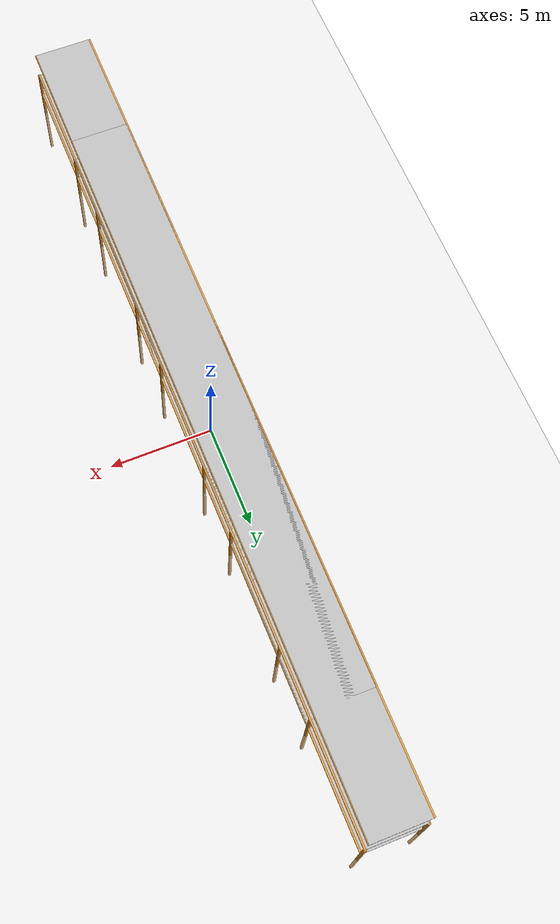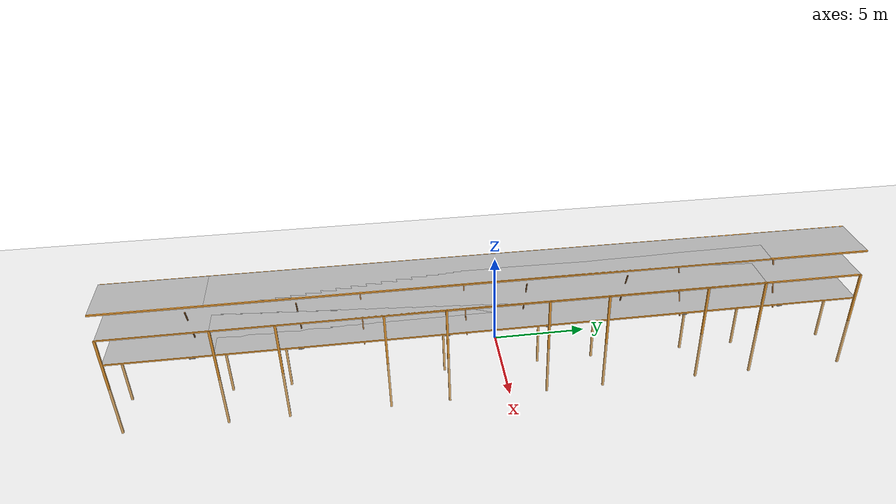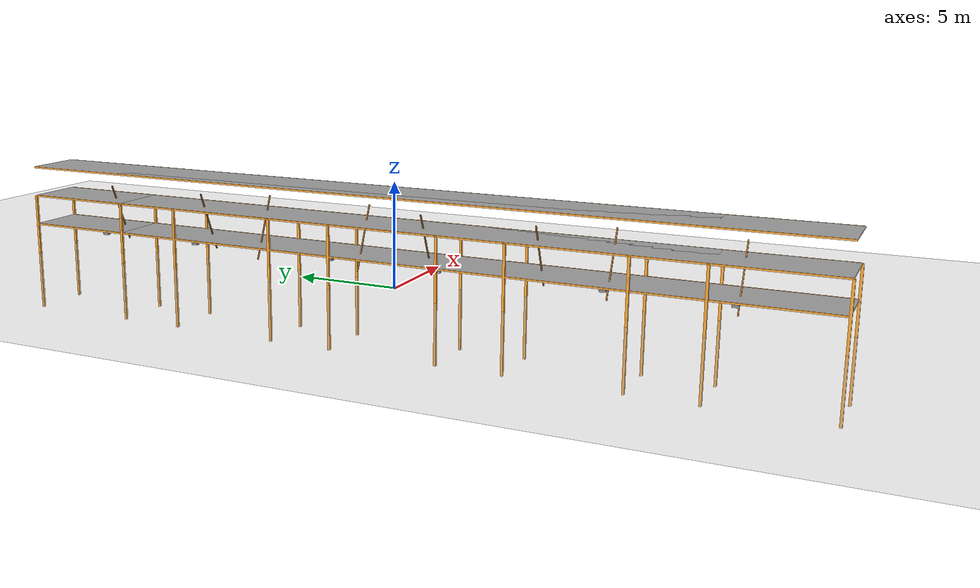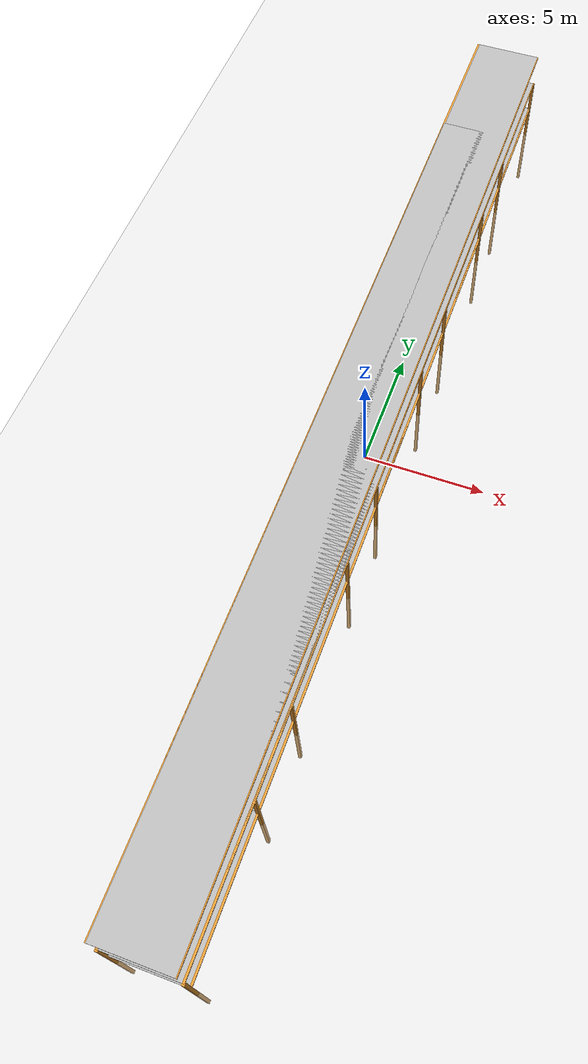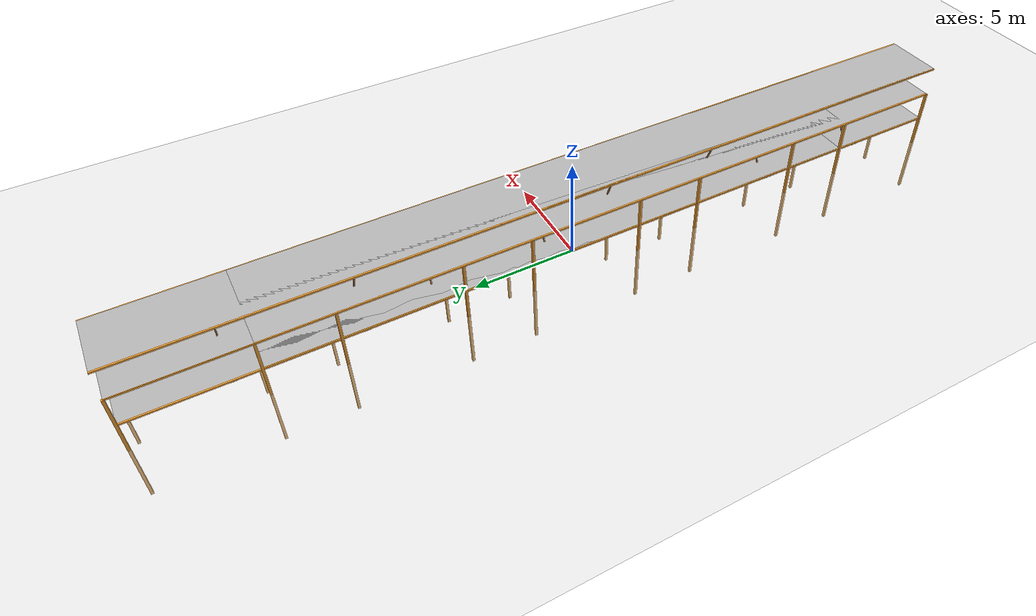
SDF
<?xml version="1.0" encoding="UTF-8"?>
<sdf version="1.9">
  <world name="warehouse">
    <physics type="ode">
      <max_step_size>0.004</max_step_size>
      <real_time_factor>1.0</real_time_factor>
      <real_time_update_rate>250</real_time_update_rate>
    </physics>

    <gravity>0 0 -9.8</gravity>
    <magnetic_field>6e-06 2.3e-05 -4.2e-05</magnetic_field>
    <atmosphere type="adiabatic"/>

    <scene>
      <grid>false</grid>
      <ambient>0.4 0.4 0.4 1</ambient>
      <background>0.7 0.7 0.7 1</background>
      <shadows>true</shadows>
    </scene>

    <model name="ground_plane">
      <static>true</static>
      <link name="link">
        <collision name="collision">
          <geometry>
            <plane>
              <normal>0 0 1</normal>
              <size>1 1</size>
            </plane>
          </geometry>
          <surface>
            <friction>
              <ode/>
            </friction>
            <bounce/>
            <contact/>
          </surface>
        </collision>
        <visual name="visual">
          <geometry>
            <plane>
              <normal>0 0 1</normal>
              <size>500 500</size>
            </plane>
          </geometry>
          <material>
            <ambient>0.8 0.8 0.8 1</ambient>
            <diffuse>0.8 0.8 0.8 1</diffuse>
            <specular>0.8 0.8 0.8 1</specular>
          </material>
        </visual>
        <pose>0 0 0 0 -0 0</pose>
        <inertial>
          <pose>0 0 0 0 -0 0</pose>
          <mass>1</mass>
          <inertia>
            <ixx>1</ixx>
            <ixy>0</ixy>
            <ixz>0</ixz>
            <iyy>1</iyy>
            <iyz>0</iyz>
            <izz>1</izz>
          </inertia>
        </inertial>
        <enable_wind>false</enable_wind>
      </link>
      <pose>0 0 0 0 -0 0</pose>
      <self_collide>false</self_collide>
    </model>

    <light name="sunUTC" type="directional">
      <pose>0 0 500 0 -0 0</pose>
      <cast_shadows>true</cast_shadows>
      <intensity>1</intensity>
      <direction>0.001 0.625 -0.78</direction>
      <diffuse>0.904 0.904 0.904 1</diffuse>
      <specular>0.271 0.271 0.271 1</specular>
      <attenuation>
        <range>2000</range>
        <linear>0</linear>
        <constant>1</constant>
        <quadratic>0</quadratic>
      </attenuation>
      <spot>
        <inner_angle>0</inner_angle>
        <outer_angle>0</outer_angle>
        <falloff>0</falloff>
      </spot>
    </light>

    <spherical_coordinates>
      <surface_model>EARTH_WGS84</surface_model>
      <world_frame_orientation>ENU</world_frame_orientation>
      <latitude_deg>47.397971057728974</latitude_deg>
      <longitude_deg> 8.546163739800146</longitude_deg>
      <elevation>0</elevation>
    </spherical_coordinates>

    <!-- Warehouse walls -->

      <!-- Front wall -->

      <!-- Back wall -->

      <!-- Left wall -->

      <!-- Right wall -->

    <!-- Warehouse Rackings -->
    <include>
      <uri>model://warehouse_rack</uri>
      <pose>0 -2.75 0 0 0 0</pose>
      <name>rack_1</name>
    </include>

    <include>
      <uri>model://warehouse_rack</uri>
      <pose>0 2.75 0 0 0 0</pose>
      <name>rack_2</name>
    </include>

    <!-- Include arucotag model -->

    <gui fullscreen="0">
      <camera name="user_camera">
        <pose>-20 -20 15 0 0.3 0.78</pose>
        <view_controller>orbit</view_controller>
      </camera>
    </gui>

  </world>
</sdf>

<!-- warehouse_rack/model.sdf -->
<sdf version='1.6'>
  <model name='warehouse_rack'>
    <static>true</static>

    <!-- Industrial Warehouse Rack - Multi-Shelf Design -->
    <!-- Base dimensions: 3m wide x 35m long x 6m tall -->
    <!-- 4 shelf levels with visible support structure -->

    <!-- ========================= VERTICAL POSTS ========================= -->
    <!-- Left side posts -->
    <link name='post_left_1'>
      <pose>-1.4 -17.5 0 0 0 0</pose>
      <collision name='collision'>
        <geometry>
          <box>
            <size>0.12 0.12 6</size>
          </box>
        </geometry>
      </collision>
      <visual name='visual'>
        <geometry>
          <box>
            <size>0.12 0.12 6</size>
          </box>
        </geometry>
        <material>
          <ambient>0.8 0.5 0.1 1</ambient>
          <diffuse>0.9 0.6 0.2 1</diffuse>
        </material>
      </visual>
    </link>

    <link name='post_left_2'>
      <pose>-1.4 -8.75 0 0 0 0</pose>
      <collision name='collision'>
        <geometry>
          <box>
            <size>0.12 0.12 6</size>
          </box>
        </geometry>
      </collision>
      <visual name='visual'>
        <geometry>
          <box>
            <size>0.12 0.12 6</size>
          </box>
        </geometry>
        <material>
          <ambient>0.8 0.5 0.1 1</ambient>
          <diffuse>0.9 0.6 0.2 1</diffuse>
        </material>
      </visual>
    </link>

    <link name='post_left_3'>
      <pose>-1.4 0 0 0 0 0</pose>
      <collision name='collision'>
        <geometry>
          <box>
            <size>0.12 0.12 6</size>
          </box>
        </geometry>
      </collision>
      <visual name='visual'>
        <geometry>
          <box>
            <size>0.12 0.12 6</size>
          </box>
        </geometry>
        <material>
          <ambient>0.8 0.5 0.1 1</ambient>
          <diffuse>0.9 0.6 0.2 1</diffuse>
        </material>
      </visual>
    </link>

    <link name='post_left_4'>
      <pose>-1.4 8.75 0 0 0 0</pose>
      <collision name='collision'>
        <geometry>
          <box>
            <size>0.12 0.12 6</size>
          </box>
        </geometry>
      </collision>
      <visual name='visual'>
        <geometry>
          <box>
            <size>0.12 0.12 6</size>
          </box>
        </geometry>
        <material>
          <ambient>0.8 0.5 0.1 1</ambient>
          <diffuse>0.9 0.6 0.2 1</diffuse>
        </material>
      </visual>
    </link>

    <link name='post_left_5'>
      <pose>-1.4 17.5 0 0 0 0</pose>
      <collision name='collision'>
        <geometry>
          <box>
            <size>0.12 0.12 6</size>
          </box>
        </geometry>
      </collision>
      <visual name='visual'>
        <geometry>
          <box>
            <size>0.12 0.12 6</size>
          </box>
        </geometry>
        <material>
          <ambient>0.8 0.5 0.1 1</ambient>
          <diffuse>0.9 0.6 0.2 1</diffuse>
        </material>
      </visual>
    </link>

    <!-- Right side posts -->
    <link name='post_right_1'>
      <pose>1.4 -17.5 0 0 0 0</pose>
      <collision name='collision'>
        <geometry>
          <box>
            <size>0.12 0.12 6</size>
          </box>
        </geometry>
      </collision>
      <visual name='visual'>
        <geometry>
          <box>
            <size>0.12 0.12 6</size>
          </box>
        </geometry>
        <material>
          <ambient>0.8 0.5 0.1 1</ambient>
          <diffuse>0.9 0.6 0.2 1</diffuse>
        </material>
      </visual>
    </link>

    <link name='post_right_2'>
      <pose>1.4 -8.75 0 0 0 0</pose>
      <collision name='collision'>
        <geometry>
          <box>
            <size>0.12 0.12 6</size>
          </box>
        </geometry>
      </collision>
      <visual name='visual'>
        <geometry>
          <box>
            <size>0.12 0.12 6</size>
          </box>
        </geometry>
        <material>
          <ambient>0.8 0.5 0.1 1</ambient>
          <diffuse>0.9 0.6 0.2 1</diffuse>
        </material>
      </visual>
    </link>

    <link name='post_right_3'>
      <pose>1.4 0 0 0 0 0</pose>
      <collision name='collision'>
        <geometry>
          <box>
            <size>0.12 0.12 6</size>
          </box>
        </geometry>
      </collision>
      <visual name='visual'>
        <geometry>
          <box>
            <size>0.12 0.12 6</size>
          </box>
        </geometry>
        <material>
          <ambient>0.8 0.5 0.1 1</ambient>
          <diffuse>0.9 0.6 0.2 1</diffuse>
        </material>
      </visual>
    </link>

    <link name='post_right_4'>
      <pose>1.4 8.75 0 0 0 0</pose>
      <collision name='collision'>
        <geometry>
          <box>
            <size>0.12 0.12 6</size>
          </box>
        </geometry>
      </collision>
      <visual name='visual'>
        <geometry>
          <box>
            <size>0.12 0.12 6</size>
          </box>
        </geometry>
        <material>
          <ambient>0.8 0.5 0.1 1</ambient>
          <diffuse>0.9 0.6 0.2 1</diffuse>
        </material>
      </visual>
    </link>

    <link name='post_right_5'>
      <pose>1.4 17.5 0 0 0 0</pose>
      <collision name='collision'>
        <geometry>
          <box>
            <size>0.12 0.12 6</size>
          </box>
        </geometry>
      </collision>
      <visual name='visual'>
        <geometry>
          <box>
            <size>0.12 0.12 6</size>
          </box>
        </geometry>
        <material>
          <ambient>0.8 0.5 0.1 1</ambient>
          <diffuse>0.9 0.6 0.2 1</diffuse>
        </material>
      </visual>
    </link>

    <!-- ========================= SHELF LEVELS ========================= -->
    <!-- Level 1 Shelves (1.5m height) -->
    <link name='shelf_level1'>
      <pose>0 0 1.5 0 0 0</pose>
      <collision name='collision'>
        <geometry>
          <box>
            <size>2.8 35 0.08</size>
          </box>
        </geometry>
      </collision>
      <visual name='visual'>
        <geometry>
          <box>
            <size>2.8 35 0.08</size>
          </box>
        </geometry>
        <material>
          <ambient>0.6 0.6 0.6 1</ambient>
          <diffuse>0.7 0.7 0.7 1</diffuse>
        </material>
      </visual>
    </link>

    <!-- Level 2 Shelves (3m height) -->
    <link name='shelf_level2'>
      <pose>0 0 3 0 0 0</pose>
      <collision name='collision'>
        <geometry>
          <box>
            <size>2.8 35 0.08</size>
          </box>
        </geometry>
      </collision>
      <visual name='visual'>
        <geometry>
          <box>
            <size>2.8 35 0.08</size>
          </box>
        </geometry>
        <material>
          <ambient>0.6 0.6 0.6 1</ambient>
          <diffuse>0.7 0.7 0.7 1</diffuse>
        </material>
      </visual>
    </link>

    <!-- Level 3 Shelves (4.5m height) -->
    <link name='shelf_level3'>
      <pose>0 0 4.5 0 0 0</pose>
      <collision name='collision'>
        <geometry>
          <box>
            <size>2.8 35 0.08</size>
          </box>
        </geometry>
      </collision>
      <visual name='visual'>
        <geometry>
          <box>
            <size>2.8 35 0.08</size>
          </box>
        </geometry>
        <material>
          <ambient>0.6 0.6 0.6 1</ambient>
          <diffuse>0.7 0.7 0.7 1</diffuse>
        </material>
      </visual>
    </link>

    <!-- ========================= HORIZONTAL SUPPORT BEAMS ========================= -->
    <!-- Front horizontal beams connecting posts -->
    <link name='beam_front_1'>
      <pose>-1.4 0 1.5 0 0 1.57079</pose>
      <visual name='visual'>
        <geometry>
          <box>
            <size>35 0.08 0.08</size>
          </box>
        </geometry>
        <material>
          <ambient>0.8 0.5 0.1 1</ambient>
          <diffuse>0.9 0.6 0.2 1</diffuse>
        </material>
      </visual>
    </link>

    <link name='beam_front_2'>
      <pose>-1.4 0 3 0 0 1.57079</pose>
      <visual name='visual'>
        <geometry>
          <box>
            <size>35 0.08 0.08</size>
          </box>
        </geometry>
        <material>
          <ambient>0.8 0.5 0.1 1</ambient>
          <diffuse>0.9 0.6 0.2 1</diffuse>
        </material>
      </visual>
    </link>

    <link name='beam_front_3'>
      <pose>-1.4 0 4.5 0 0 1.57079</pose>
      <visual name='visual'>
        <geometry>
          <box>
            <size>35 0.08 0.08</size>
          </box>
        </geometry>
        <material>
          <ambient>0.8 0.5 0.1 1</ambient>
          <diffuse>0.9 0.6 0.2 1</diffuse>
        </material>
      </visual>
    </link>

    <!-- Back horizontal beams -->
    <link name='beam_back_1'>
      <pose>1.4 0 1.5 0 0 1.57079</pose>
      <visual name='visual'>
        <geometry>
          <box>
            <size>35 0.08 0.08</size>
          </box>
        </geometry>
        <material>
          <ambient>0.8 0.5 0.1 1</ambient>
          <diffuse>0.9 0.6 0.2 1</diffuse>
        </material>
      </visual>
    </link>

    <link name='beam_back_2'>
      <pose>1.4 0 3 0 0 1.57079</pose>
      <visual name='visual'>
        <geometry>
          <box>
            <size>35 0.08 0.08</size>
          </box>
        </geometry>
        <material>
          <ambient>0.8 0.5 0.1 1</ambient>
          <diffuse>0.9 0.6 0.2 1</diffuse>
        </material>
      </visual>
    </link>

    <link name='beam_back_3'>
      <pose>1.4 0 4.5 0 0 1.57079</pose>
      <visual name='visual'>
        <geometry>
          <box>
            <size>35 0.08 0.08</size>
          </box>
        </geometry>
        <material>
          <ambient>0.8 0.5 0.1 1</ambient>
          <diffuse>0.9 0.6 0.2 1</diffuse>
        </material>
      </visual>
    </link>

    <!-- ========================= CROSS BRACING ========================= -->
    <!-- Diagonal braces for structural stability -->
    <link name='brace_1'>
      <pose>0 -13.125 2.25 0 0.3927 0</pose>
      <visual name='visual'>
        <geometry>
          <box>
            <size>0.06 0.06 3.2</size>
          </box>
        </geometry>
        <material>
          <ambient>0.5 0.3 0.1 1</ambient>
          <diffuse>0.6 0.4 0.2 1</diffuse>
        </material>
      </visual>
    </link>

    <link name='brace_2'>
      <pose>0 -4.375 2.25 0 -0.3927 0</pose>
      <visual name='visual'>
        <geometry>
          <box>
            <size>0.06 0.06 3.2</size>
          </box>
        </geometry>
        <material>
          <ambient>0.5 0.3 0.1 1</ambient>
          <diffuse>0.6 0.4 0.2 1</diffuse>
        </material>
      </visual>
    </link>

    <link name='brace_3'>
      <pose>0 4.375 2.25 0 0.3927 0</pose>
      <visual name='visual'>
        <geometry>
          <box>
            <size>0.06 0.06 3.2</size>
          </box>
        </geometry>
        <material>
          <ambient>0.5 0.3 0.1 1</ambient>
          <diffuse>0.6 0.4 0.2 1</diffuse>
        </material>
      </visual>
    </link>

    <link name='brace_4'>
      <pose>0 13.125 2.25 0 -0.3927 0</pose>
      <visual name='visual'>
        <geometry>
          <box>
            <size>0.06 0.06 3.2</size>
          </box>
        </geometry>
        <material>
          <ambient>0.5 0.3 0.1 1</ambient>
          <diffuse>0.6 0.4 0.2 1</diffuse>
        </material>
      </visual>
    </link>

    <!-- ========================= SHELF SUPPORT BRACKETS ========================= -->
    <!-- Support brackets under each shelf -->
    <link name='bracket_1_left'>
      <pose>-1.2 -13.125 1.4 0 0 0</pose>
      <visual name='visual'>
        <geometry>
          <box>
            <size>0.2 0.3 0.2</size>
          </box>
        </geometry>
        <material>
          <ambient>0.4 0.4 0.4 1</ambient>
          <diffuse>0.5 0.5 0.5 1</diffuse>
        </material>
      </visual>
    </link>

    <link name='bracket_1_right'>
      <pose>1.2 -13.125 1.4 0 0 0</pose>
      <visual name='visual'>
        <geometry>
          <box>
            <size>0.2 0.3 0.2</size>
          </box>
        </geometry>
        <material>
          <ambient>0.4 0.4 0.4 1</ambient>
          <diffuse>0.5 0.5 0.5 1</diffuse>
        </material>
      </visual>
    </link>

    <link name='bracket_2_left'>
      <pose>-1.2 0 1.4 0 0 0</pose>
      <visual name='visual'>
        <geometry>
          <box>
            <size>0.2 0.3 0.2</size>
          </box>
        </geometry>
        <material>
          <ambient>0.4 0.4 0.4 1</ambient>
          <diffuse>0.5 0.5 0.5 1</diffuse>
        </material>
      </visual>
    </link>

    <link name='bracket_2_right'>
      <pose>1.2 0 1.4 0 0 0</pose>
      <visual name='visual'>
        <geometry>
          <box>
            <size>0.2 0.3 0.2</size>
          </box>
        </geometry>
        <material>
          <ambient>0.4 0.4 0.4 1</ambient>
          <diffuse>0.5 0.5 0.5 1</diffuse>
        </material>
      </visual>
    </link>

    <link name='bracket_3_left'>
      <pose>-1.2 13.125 1.4 0 0 0</pose>
      <visual name='visual'>
        <geometry>
          <box>
            <size>0.2 0.3 0.2</size>
          </box>
        </geometry>
        <material>
          <ambient>0.4 0.4 0.4 1</ambient>
          <diffuse>0.5 0.5 0.5 1</diffuse>
        </material>
      </visual>
    </link>

    <link name='bracket_3_right'>
      <pose>1.2 13.125 1.4 0 0 0</pose>
      <visual name='visual'>
        <geometry>
          <box>
            <size>0.2 0.3 0.2</size>
          </box>
        </geometry>
        <material>
          <ambient>0.4 0.4 0.4 1</ambient>
          <diffuse>0.5 0.5 0.5 1</diffuse>
        </material>
      </visual>
    </link>

  </model>
</sdf>
